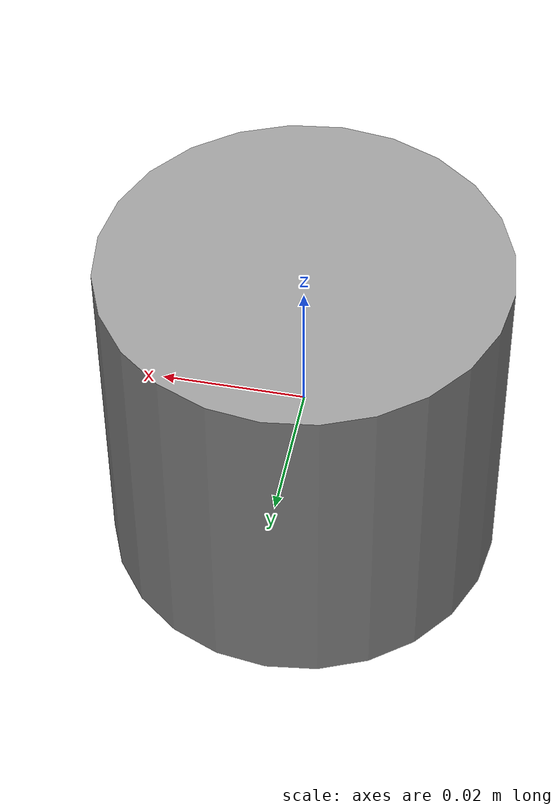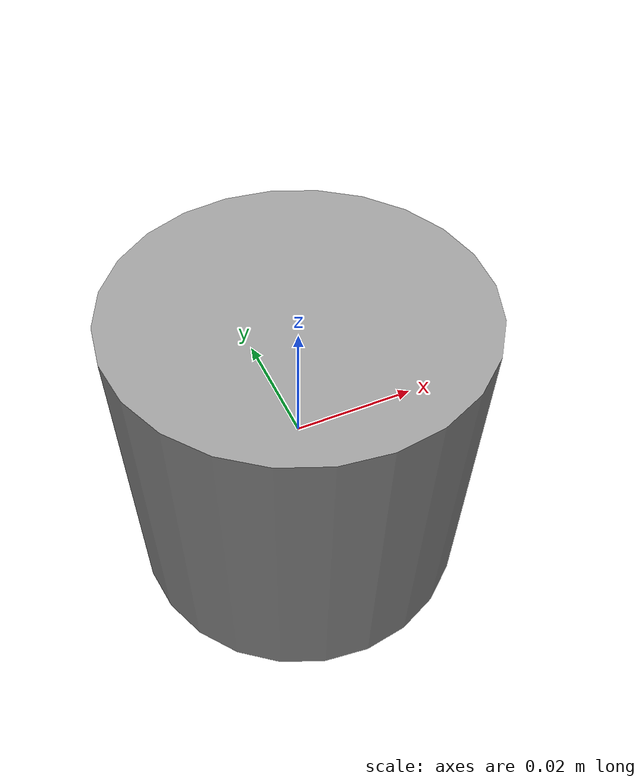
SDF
<?xml version="1.0" ?>
<sdf version="1.5">
  <model name="lidar_model">
    <link name="lidar_link">
      <collision name='collision'>
        <geometry>
          <cylinder>
            <radius>0.02775</radius>
            <length>0.051</length>
          </cylinder>
        </geometry>
      </collision>
        <inertial>
        <!-- Volume:  1.2197563200e-04 -->
        <mass> 0.105 </mass>

        <!-- Center of mass:  0.0000000000e+00  0.0000000000e+00 -0.0000000000e+00 -->
        <pose>0 0 0 0 0 0</pose>

        <!-- Inertia matrix -->
        <inertia>
          <ixx>  4.2743270295e-05 </ixx>
          <ixy>  0.0000000000e+00 </ixy>
          <ixz>  0.0000000000e+00 </ixz>
          <iyy>  4.2743270295e-05 </iyy>
          <iyz>  0.0000000000e+00 </iyz>
          <izz>  3.9969045043e-05 </izz>
        </inertia>
      </inertial>
      <visual name="visual">
        <geometry>
          <cylinder>
            <radius>0.02775</radius>
            <length>0.051</length>
          </cylinder>
        </geometry>
        <material>
          <script>
            <name>Gazebo/Grey</name>
          </script>
        </material>
      </visual>

      <sensor type="ray" name="lidar_sensor">
        <pose>0 0 0.03 0 0 0</pose>
        <visualize>false</visualize>
        <update_rate>40</update_rate>
        <ray>
          <scan>
            <horizontal>
              <samples>720</samples>
              <resolution>1</resolution>
              <min_angle>-3.14159265</min_angle>
              <max_angle>3.14159265</max_angle>
            </horizontal>
          </scan>
          <range>
            <min>0.2</min>
            <max>40</max>
            <resolution>0.03</resolution>
          </range>
          <noise>
            <type>gaussian</type>
            <mean>0.0</mean>
            <stddev>0.01</stddev>
          </noise>
        </ray>
        <plugin name="lidar_plugin" filename="libgazebo_ros_laser.so">
          <topicName>/rplidar/laser/scan</topicName>
          <frameName>base_link</frameName>
        </plugin>
      </sensor>

    </link>
  </model>
</sdf>
